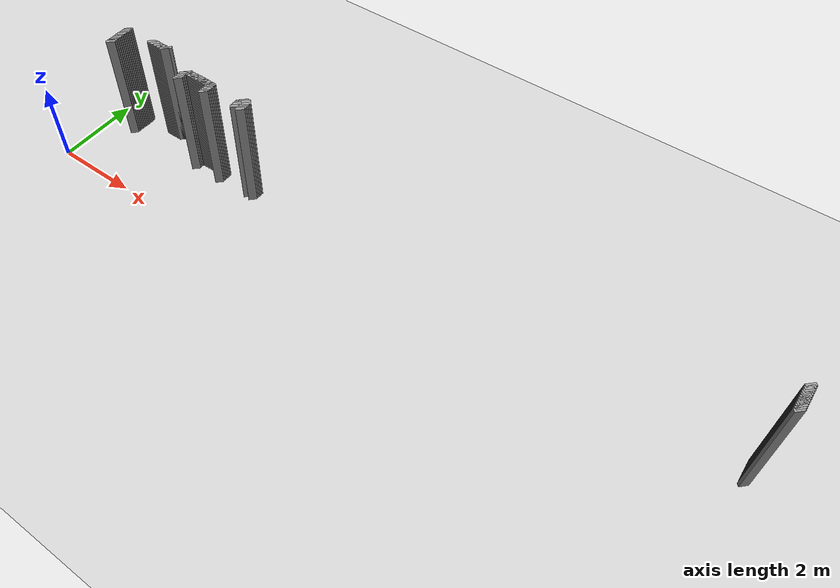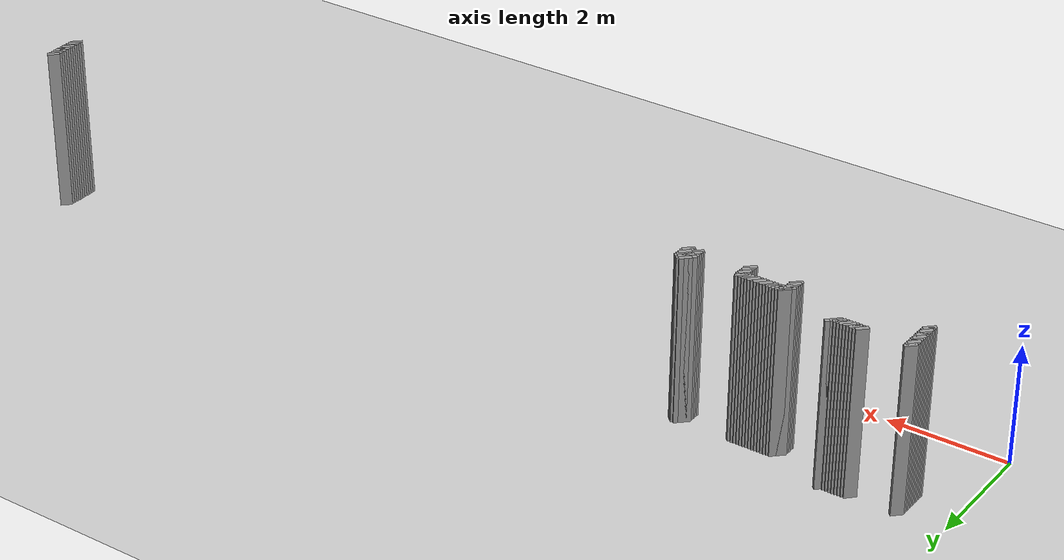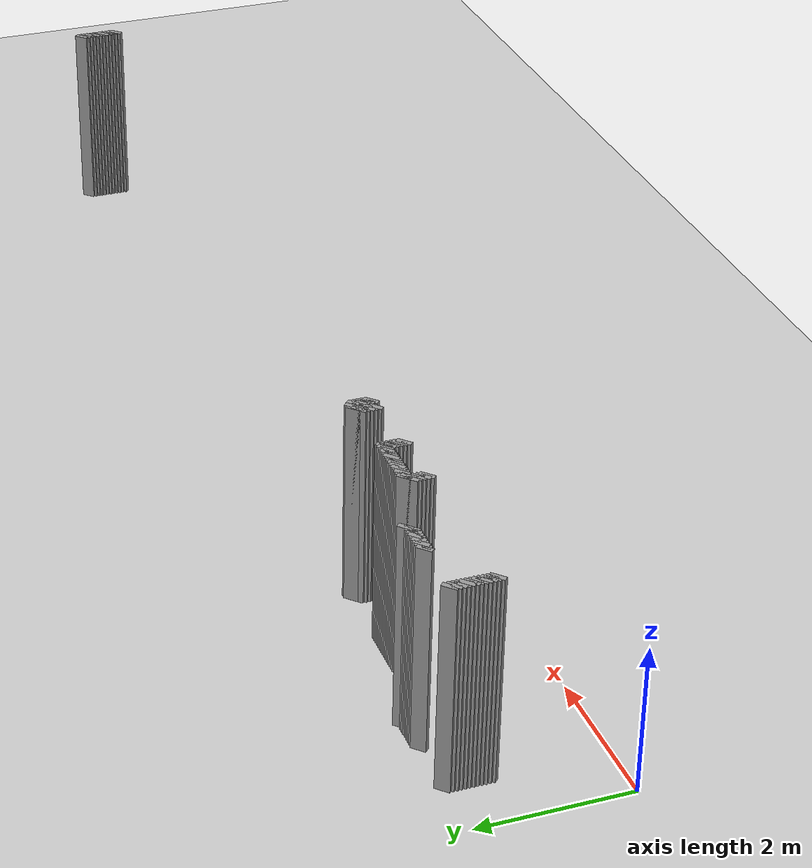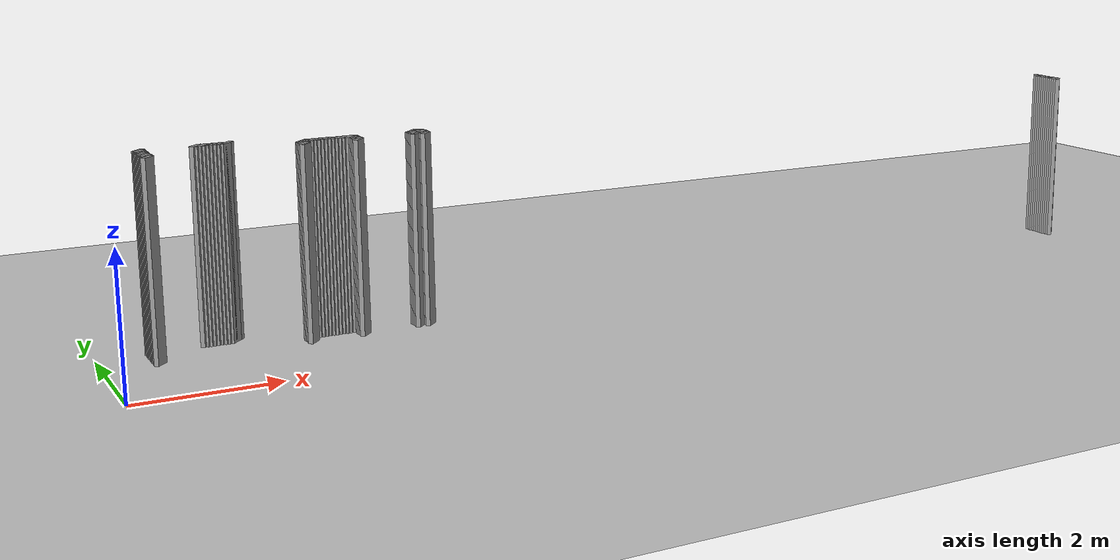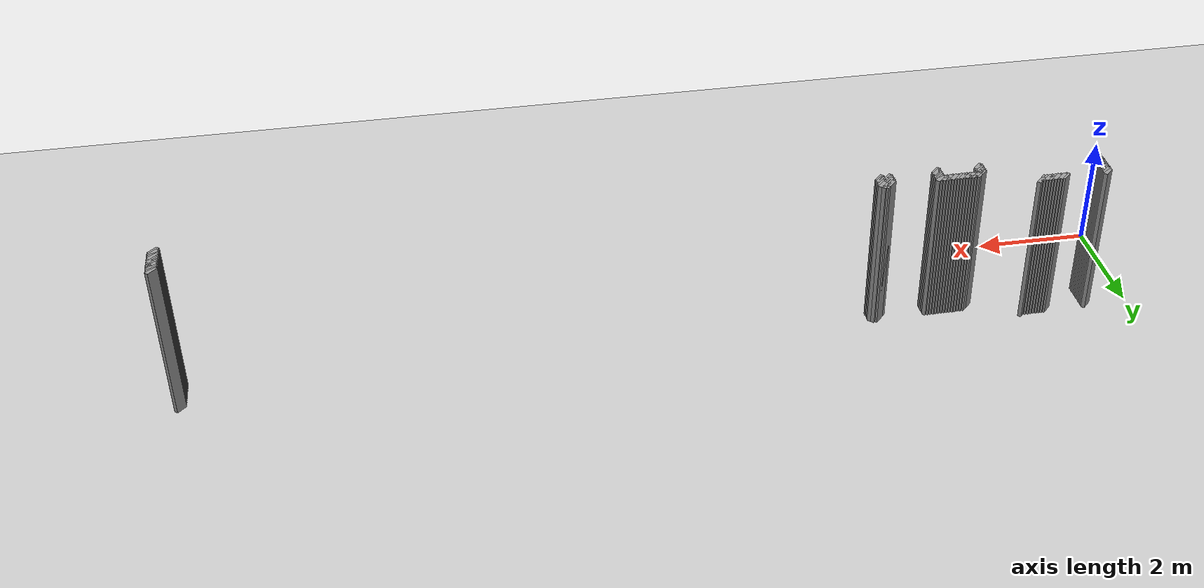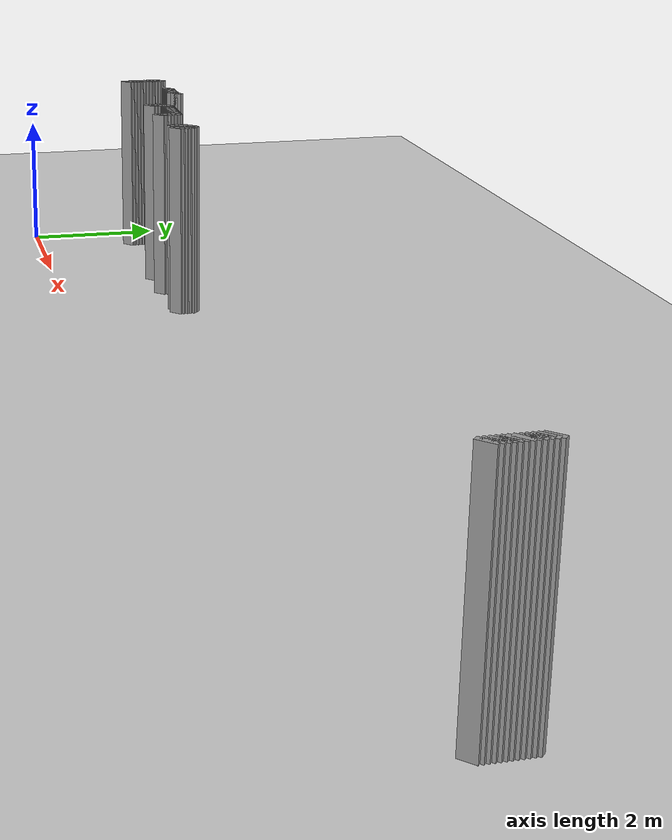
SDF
<sdf version="1.5">
 <world name="default">
  <include><uri>model://ground_plane</uri></include>
  <include><uri>model://sun</uri></include>
  <model name="grey_wall_2442">
   <static>1</static>
   <link name="link">
    <pose>1.9500000000000002 2.1  1.4 0 0 -0.7853981633974483</pose>
    <collision name="collision">
     <geometry><box><size>0.0707106781186545 .2  2.8</size></box></geometry>
    </collision>
    <visual name="visual">
     <cast_shadows>0</cast_shadows>
     <geometry><box><size>0.0707106781186545 .2  2.8</size></box></geometry>
     <material>
      <script>
       <uri>model://grey_wall/materials/scripts</uri>
       <uri>model://grey_wall/materials/textures</uri>
       <name>vrc/grey_wall</name>
      </script>
     </material>
    </visual>
   </link>
  </model>
  <model name="grey_wall_2443">
   <static>1</static>
   <link name="link">
    <pose>16.45 2.1  1.4 0 0 -0.7853981633974749</pose>
    <collision name="collision">
     <geometry><box><size>0.07071067811865261 .2  2.8</size></box></geometry>
    </collision>
    <visual name="visual">
     <cast_shadows>0</cast_shadows>
     <geometry><box><size>0.07071067811865261 .2  2.8</size></box></geometry>
     <material>
      <script>
       <uri>model://grey_wall/materials/scripts</uri>
       <uri>model://grey_wall/materials/textures</uri>
       <name>vrc/grey_wall</name>
      </script>
     </material>
    </visual>
   </link>
  </model>
  <model name="grey_wall_2444">
   <static>1</static>
   <link name="link">
    <pose>0.75 2.0500000000000003  1.4 0 0 -0.7853981633974461</pose>
    <collision name="collision">
     <geometry><box><size>0.07071067811865465 .2  2.8</size></box></geometry>
    </collision>
    <visual name="visual">
     <cast_shadows>0</cast_shadows>
     <geometry><box><size>0.07071067811865465 .2  2.8</size></box></geometry>
     <material>
      <script>
       <uri>model://grey_wall/materials/scripts</uri>
       <uri>model://grey_wall/materials/textures</uri>
       <name>vrc/grey_wall</name>
      </script>
     </material>
    </visual>
   </link>
  </model>
  <model name="grey_wall_2445">
   <static>1</static>
   <link name="link">
    <pose>1.5 2.0500000000000003  1.4 0 0 -0.7853981633974483</pose>
    <collision name="collision">
     <geometry><box><size>0.0707106781186545 .2  2.8</size></box></geometry>
    </collision>
    <visual name="visual">
     <cast_shadows>0</cast_shadows>
     <geometry><box><size>0.0707106781186545 .2  2.8</size></box></geometry>
     <material>
      <script>
       <uri>model://grey_wall/materials/scripts</uri>
       <uri>model://grey_wall/materials/textures</uri>
       <name>vrc/grey_wall</name>
      </script>
     </material>
    </visual>
   </link>
  </model>
  <model name="grey_wall_2446">
   <static>1</static>
   <link name="link">
    <pose>1.55 2.0500000000000003  1.4 0 0 -0.7853981633974483</pose>
    <collision name="collision">
     <geometry><box><size>0.0707106781186545 .2  2.8</size></box></geometry>
    </collision>
    <visual name="visual">
     <cast_shadows>0</cast_shadows>
     <geometry><box><size>0.0707106781186545 .2  2.8</size></box></geometry>
     <material>
      <script>
       <uri>model://grey_wall/materials/scripts</uri>
       <uri>model://grey_wall/materials/textures</uri>
       <name>vrc/grey_wall</name>
      </script>
     </material>
    </visual>
   </link>
  </model>
  <model name="grey_wall_2447">
   <static>1</static>
   <link name="link">
    <pose>1.6 2.0500000000000003  1.4 0 0 -0.7853981633974483</pose>
    <collision name="collision">
     <geometry><box><size>0.0707106781186545 .2  2.8</size></box></geometry>
    </collision>
    <visual name="visual">
     <cast_shadows>0</cast_shadows>
     <geometry><box><size>0.0707106781186545 .2  2.8</size></box></geometry>
     <material>
      <script>
       <uri>model://grey_wall/materials/scripts</uri>
       <uri>model://grey_wall/materials/textures</uri>
       <name>vrc/grey_wall</name>
      </script>
     </material>
    </visual>
   </link>
  </model>
  <model name="grey_wall_2448">
   <static>1</static>
   <link name="link">
    <pose>1.6500000000000001 2.0500000000000003  1.4 0 0 -0.7853981633974483</pose>
    <collision name="collision">
     <geometry><box><size>0.0707106781186545 .2  2.8</size></box></geometry>
    </collision>
    <visual name="visual">
     <cast_shadows>0</cast_shadows>
     <geometry><box><size>0.0707106781186545 .2  2.8</size></box></geometry>
     <material>
      <script>
       <uri>model://grey_wall/materials/scripts</uri>
       <uri>model://grey_wall/materials/textures</uri>
       <name>vrc/grey_wall</name>
      </script>
     </material>
    </visual>
   </link>
  </model>
  <model name="grey_wall_2449">
   <static>1</static>
   <link name="link">
    <pose>1.7000000000000002 2.0500000000000003  1.4 0 0 -0.7853981633974483</pose>
    <collision name="collision">
     <geometry><box><size>0.0707106781186545 .2  2.8</size></box></geometry>
    </collision>
    <visual name="visual">
     <cast_shadows>0</cast_shadows>
     <geometry><box><size>0.0707106781186545 .2  2.8</size></box></geometry>
     <material>
      <script>
       <uri>model://grey_wall/materials/scripts</uri>
       <uri>model://grey_wall/materials/textures</uri>
       <name>vrc/grey_wall</name>
      </script>
     </material>
    </visual>
   </link>
  </model>
  <model name="grey_wall_2450">
   <static>1</static>
   <link name="link">
    <pose>1.75 2.0500000000000003  1.4 0 0 -0.7853981633974483</pose>
    <collision name="collision">
     <geometry><box><size>0.0707106781186545 .2  2.8</size></box></geometry>
    </collision>
    <visual name="visual">
     <cast_shadows>0</cast_shadows>
     <geometry><box><size>0.0707106781186545 .2  2.8</size></box></geometry>
     <material>
      <script>
       <uri>model://grey_wall/materials/scripts</uri>
       <uri>model://grey_wall/materials/textures</uri>
       <name>vrc/grey_wall</name>
      </script>
     </material>
    </visual>
   </link>
  </model>
  <model name="grey_wall_2451">
   <static>1</static>
   <link name="link">
    <pose>1.8 2.0500000000000003  1.4 0 0 -0.7853981633974483</pose>
    <collision name="collision">
     <geometry><box><size>0.0707106781186545 .2  2.8</size></box></geometry>
    </collision>
    <visual name="visual">
     <cast_shadows>0</cast_shadows>
     <geometry><box><size>0.0707106781186545 .2  2.8</size></box></geometry>
     <material>
      <script>
       <uri>model://grey_wall/materials/scripts</uri>
       <uri>model://grey_wall/materials/textures</uri>
       <name>vrc/grey_wall</name>
      </script>
     </material>
    </visual>
   </link>
  </model>
  <model name="grey_wall_2452">
   <static>1</static>
   <link name="link">
    <pose>1.85 2.0500000000000003  1.4 0 0 -0.7853981633974483</pose>
    <collision name="collision">
     <geometry><box><size>0.0707106781186545 .2  2.8</size></box></geometry>
    </collision>
    <visual name="visual">
     <cast_shadows>0</cast_shadows>
     <geometry><box><size>0.0707106781186545 .2  2.8</size></box></geometry>
     <material>
      <script>
       <uri>model://grey_wall/materials/scripts</uri>
       <uri>model://grey_wall/materials/textures</uri>
       <name>vrc/grey_wall</name>
      </script>
     </material>
    </visual>
   </link>
  </model>
  <model name="grey_wall_2453">
   <static>1</static>
   <link name="link">
    <pose>1.9000000000000001 2.0500000000000003  1.4 0 0 -0.7853981633974483</pose>
    <collision name="collision">
     <geometry><box><size>0.0707106781186545 .2  2.8</size></box></geometry>
    </collision>
    <visual name="visual">
     <cast_shadows>0</cast_shadows>
     <geometry><box><size>0.0707106781186545 .2  2.8</size></box></geometry>
     <material>
      <script>
       <uri>model://grey_wall/materials/scripts</uri>
       <uri>model://grey_wall/materials/textures</uri>
       <name>vrc/grey_wall</name>
      </script>
     </material>
    </visual>
   </link>
  </model>
  <model name="grey_wall_2454">
   <static>1</static>
   <link name="link">
    <pose>16.45 2.0500000000000003  1.4 0 0 -0.7853981633974749</pose>
    <collision name="collision">
     <geometry><box><size>0.07071067811865261 .2  2.8</size></box></geometry>
    </collision>
    <visual name="visual">
     <cast_shadows>0</cast_shadows>
     <geometry><box><size>0.07071067811865261 .2  2.8</size></box></geometry>
     <material>
      <script>
       <uri>model://grey_wall/materials/scripts</uri>
       <uri>model://grey_wall/materials/textures</uri>
       <name>vrc/grey_wall</name>
      </script>
     </material>
    </visual>
   </link>
  </model>
  <model name="grey_wall_2455">
   <static>1</static>
   <link name="link">
    <pose>0.75 2.0  1.4 0 0 -0.7853981633974461</pose>
    <collision name="collision">
     <geometry><box><size>0.07071067811865465 .2  2.8</size></box></geometry>
    </collision>
    <visual name="visual">
     <cast_shadows>0</cast_shadows>
     <geometry><box><size>0.07071067811865465 .2  2.8</size></box></geometry>
     <material>
      <script>
       <uri>model://grey_wall/materials/scripts</uri>
       <uri>model://grey_wall/materials/textures</uri>
       <name>vrc/grey_wall</name>
      </script>
     </material>
    </visual>
   </link>
  </model>
  <model name="grey_wall_2456">
   <static>1</static>
   <link name="link">
    <pose>16.45 2.0  1.4 0 0 -0.7853981633974749</pose>
    <collision name="collision">
     <geometry><box><size>0.07071067811865261 .2  2.8</size></box></geometry>
    </collision>
    <visual name="visual">
     <cast_shadows>0</cast_shadows>
     <geometry><box><size>0.07071067811865261 .2  2.8</size></box></geometry>
     <material>
      <script>
       <uri>model://grey_wall/materials/scripts</uri>
       <uri>model://grey_wall/materials/textures</uri>
       <name>vrc/grey_wall</name>
      </script>
     </material>
    </visual>
   </link>
  </model>
  <model name="grey_wall_2457">
   <static>1</static>
   <link name="link">
    <pose>0.75 1.9500000000000002  1.4 0 0 -0.7853981633974461</pose>
    <collision name="collision">
     <geometry><box><size>0.07071067811865465 .2  2.8</size></box></geometry>
    </collision>
    <visual name="visual">
     <cast_shadows>0</cast_shadows>
     <geometry><box><size>0.07071067811865465 .2  2.8</size></box></geometry>
     <material>
      <script>
       <uri>model://grey_wall/materials/scripts</uri>
       <uri>model://grey_wall/materials/textures</uri>
       <name>vrc/grey_wall</name>
      </script>
     </material>
    </visual>
   </link>
  </model>
  <model name="grey_wall_2458">
   <static>1</static>
   <link name="link">
    <pose>16.45 1.9500000000000002  1.4 0 0 -0.7853981633974749</pose>
    <collision name="collision">
     <geometry><box><size>0.07071067811865261 .2  2.8</size></box></geometry>
    </collision>
    <visual name="visual">
     <cast_shadows>0</cast_shadows>
     <geometry><box><size>0.07071067811865261 .2  2.8</size></box></geometry>
     <material>
      <script>
       <uri>model://grey_wall/materials/scripts</uri>
       <uri>model://grey_wall/materials/textures</uri>
       <name>vrc/grey_wall</name>
      </script>
     </material>
    </visual>
   </link>
  </model>
  <model name="grey_wall_2459">
   <static>1</static>
   <link name="link">
    <pose>0.75 1.9000000000000001  1.4 0 0 -0.7853981633974461</pose>
    <collision name="collision">
     <geometry><box><size>0.07071067811865465 .2  2.8</size></box></geometry>
    </collision>
    <visual name="visual">
     <cast_shadows>0</cast_shadows>
     <geometry><box><size>0.07071067811865465 .2  2.8</size></box></geometry>
     <material>
      <script>
       <uri>model://grey_wall/materials/scripts</uri>
       <uri>model://grey_wall/materials/textures</uri>
       <name>vrc/grey_wall</name>
      </script>
     </material>
    </visual>
   </link>
  </model>
  <model name="grey_wall_2460">
   <static>1</static>
   <link name="link">
    <pose>16.45 1.9000000000000001  1.4 0 0 -0.7853981633974749</pose>
    <collision name="collision">
     <geometry><box><size>0.07071067811865261 .2  2.8</size></box></geometry>
    </collision>
    <visual name="visual">
     <cast_shadows>0</cast_shadows>
     <geometry><box><size>0.07071067811865261 .2  2.8</size></box></geometry>
     <material>
      <script>
       <uri>model://grey_wall/materials/scripts</uri>
       <uri>model://grey_wall/materials/textures</uri>
       <name>vrc/grey_wall</name>
      </script>
     </material>
    </visual>
   </link>
  </model>
  <model name="grey_wall_2461">
   <static>1</static>
   <link name="link">
    <pose>0.75 1.85  1.4 0 0 -0.7853981633974461</pose>
    <collision name="collision">
     <geometry><box><size>0.07071067811865465 .2  2.8</size></box></geometry>
    </collision>
    <visual name="visual">
     <cast_shadows>0</cast_shadows>
     <geometry><box><size>0.07071067811865465 .2  2.8</size></box></geometry>
     <material>
      <script>
       <uri>model://grey_wall/materials/scripts</uri>
       <uri>model://grey_wall/materials/textures</uri>
       <name>vrc/grey_wall</name>
      </script>
     </material>
    </visual>
   </link>
  </model>
  <model name="grey_wall_2462">
   <static>1</static>
   <link name="link">
    <pose>16.45 1.85  1.4 0 0 -0.7853981633974749</pose>
    <collision name="collision">
     <geometry><box><size>0.07071067811865261 .2  2.8</size></box></geometry>
    </collision>
    <visual name="visual">
     <cast_shadows>0</cast_shadows>
     <geometry><box><size>0.07071067811865261 .2  2.8</size></box></geometry>
     <material>
      <script>
       <uri>model://grey_wall/materials/scripts</uri>
       <uri>model://grey_wall/materials/textures</uri>
       <name>vrc/grey_wall</name>
      </script>
     </material>
    </visual>
   </link>
  </model>
  <model name="grey_wall_2463">
   <static>1</static>
   <link name="link">
    <pose>0.75 1.8  1.4 0 0 -0.7853981633974461</pose>
    <collision name="collision">
     <geometry><box><size>0.07071067811865465 .2  2.8</size></box></geometry>
    </collision>
    <visual name="visual">
     <cast_shadows>0</cast_shadows>
     <geometry><box><size>0.07071067811865465 .2  2.8</size></box></geometry>
     <material>
      <script>
       <uri>model://grey_wall/materials/scripts</uri>
       <uri>model://grey_wall/materials/textures</uri>
       <name>vrc/grey_wall</name>
      </script>
     </material>
    </visual>
   </link>
  </model>
  <model name="grey_wall_2464">
   <static>1</static>
   <link name="link">
    <pose>4.5 1.8  1.4 0 0 -0.7853981633974394</pose>
    <collision name="collision">
     <geometry><box><size>0.07071067811865513 .2  2.8</size></box></geometry>
    </collision>
    <visual name="visual">
     <cast_shadows>0</cast_shadows>
     <geometry><box><size>0.07071067811865513 .2  2.8</size></box></geometry>
     <material>
      <script>
       <uri>model://grey_wall/materials/scripts</uri>
       <uri>model://grey_wall/materials/textures</uri>
       <name>vrc/grey_wall</name>
      </script>
     </material>
    </visual>
   </link>
  </model>
  <model name="grey_wall_2465">
   <static>1</static>
   <link name="link">
    <pose>4.55 1.8  1.4 0 0 -0.7853981633974394</pose>
    <collision name="collision">
     <geometry><box><size>0.07071067811865513 .2  2.8</size></box></geometry>
    </collision>
    <visual name="visual">
     <cast_shadows>0</cast_shadows>
     <geometry><box><size>0.07071067811865513 .2  2.8</size></box></geometry>
     <material>
      <script>
       <uri>model://grey_wall/materials/scripts</uri>
       <uri>model://grey_wall/materials/textures</uri>
       <name>vrc/grey_wall</name>
      </script>
     </material>
    </visual>
   </link>
  </model>
  <model name="grey_wall_2466">
   <static>1</static>
   <link name="link">
    <pose>16.45 1.8  1.4 0 0 -0.7853981633974749</pose>
    <collision name="collision">
     <geometry><box><size>0.07071067811865261 .2  2.8</size></box></geometry>
    </collision>
    <visual name="visual">
     <cast_shadows>0</cast_shadows>
     <geometry><box><size>0.07071067811865261 .2  2.8</size></box></geometry>
     <material>
      <script>
       <uri>model://grey_wall/materials/scripts</uri>
       <uri>model://grey_wall/materials/textures</uri>
       <name>vrc/grey_wall</name>
      </script>
     </material>
    </visual>
   </link>
  </model>
  <model name="grey_wall_2467">
   <static>1</static>
   <link name="link">
    <pose>0.75 1.75  1.4 0 0 -0.7853981633974461</pose>
    <collision name="collision">
     <geometry><box><size>0.07071067811865465 .2  2.8</size></box></geometry>
    </collision>
    <visual name="visual">
     <cast_shadows>0</cast_shadows>
     <geometry><box><size>0.07071067811865465 .2  2.8</size></box></geometry>
     <material>
      <script>
       <uri>model://grey_wall/materials/scripts</uri>
       <uri>model://grey_wall/materials/textures</uri>
       <name>vrc/grey_wall</name>
      </script>
     </material>
    </visual>
   </link>
  </model>
  <model name="grey_wall_2468">
   <static>1</static>
   <link name="link">
    <pose>2.9000000000000004 1.75  1.4 0 0 -0.7853981633974483</pose>
    <collision name="collision">
     <geometry><box><size>0.0707106781186545 .2  2.8</size></box></geometry>
    </collision>
    <visual name="visual">
     <cast_shadows>0</cast_shadows>
     <geometry><box><size>0.0707106781186545 .2  2.8</size></box></geometry>
     <material>
      <script>
       <uri>model://grey_wall/materials/scripts</uri>
       <uri>model://grey_wall/materials/textures</uri>
       <name>vrc/grey_wall</name>
      </script>
     </material>
    </visual>
   </link>
  </model>
  <model name="grey_wall_2469">
   <static>1</static>
   <link name="link">
    <pose>2.95 1.75  1.4 0 0 -0.7853981633974483</pose>
    <collision name="collision">
     <geometry><box><size>0.0707106781186545 .2  2.8</size></box></geometry>
    </collision>
    <visual name="visual">
     <cast_shadows>0</cast_shadows>
     <geometry><box><size>0.0707106781186545 .2  2.8</size></box></geometry>
     <material>
      <script>
       <uri>model://grey_wall/materials/scripts</uri>
       <uri>model://grey_wall/materials/textures</uri>
       <name>vrc/grey_wall</name>
      </script>
     </material>
    </visual>
   </link>
  </model>
  <model name="grey_wall_2470">
   <static>1</static>
   <link name="link">
    <pose>3.0 1.75  1.4 0 0 -0.7853981633974483</pose>
    <collision name="collision">
     <geometry><box><size>0.0707106781186545 .2  2.8</size></box></geometry>
    </collision>
    <visual name="visual">
     <cast_shadows>0</cast_shadows>
     <geometry><box><size>0.0707106781186545 .2  2.8</size></box></geometry>
     <material>
      <script>
       <uri>model://grey_wall/materials/scripts</uri>
       <uri>model://grey_wall/materials/textures</uri>
       <name>vrc/grey_wall</name>
      </script>
     </material>
    </visual>
   </link>
  </model>
  <model name="grey_wall_2471">
   <static>1</static>
   <link name="link">
    <pose>3.0500000000000003 1.75  1.4 0 0 -0.7853981633974483</pose>
    <collision name="collision">
     <geometry><box><size>0.0707106781186545 .2  2.8</size></box></geometry>
    </collision>
    <visual name="visual">
     <cast_shadows>0</cast_shadows>
     <geometry><box><size>0.0707106781186545 .2  2.8</size></box></geometry>
     <material>
      <script>
       <uri>model://grey_wall/materials/scripts</uri>
       <uri>model://grey_wall/materials/textures</uri>
       <name>vrc/grey_wall</name>
      </script>
     </material>
    </visual>
   </link>
  </model>
  <model name="grey_wall_2472">
   <static>1</static>
   <link name="link">
    <pose>3.1 1.75  1.4 0 0 -0.7853981633974483</pose>
    <collision name="collision">
     <geometry><box><size>0.0707106781186545 .2  2.8</size></box></geometry>
    </collision>
    <visual name="visual">
     <cast_shadows>0</cast_shadows>
     <geometry><box><size>0.0707106781186545 .2  2.8</size></box></geometry>
     <material>
      <script>
       <uri>model://grey_wall/materials/scripts</uri>
       <uri>model://grey_wall/materials/textures</uri>
       <name>vrc/grey_wall</name>
      </script>
     </material>
    </visual>
   </link>
  </model>
  <model name="grey_wall_2473">
   <static>1</static>
   <link name="link">
    <pose>3.1500000000000004 1.75  1.4 0 0 -0.7853981633974483</pose>
    <collision name="collision">
     <geometry><box><size>0.0707106781186545 .2  2.8</size></box></geometry>
    </collision>
    <visual name="visual">
     <cast_shadows>0</cast_shadows>
     <geometry><box><size>0.0707106781186545 .2  2.8</size></box></geometry>
     <material>
      <script>
       <uri>model://grey_wall/materials/scripts</uri>
       <uri>model://grey_wall/materials/textures</uri>
       <name>vrc/grey_wall</name>
      </script>
     </material>
    </visual>
   </link>
  </model>
  <model name="grey_wall_2474">
   <static>1</static>
   <link name="link">
    <pose>3.2 1.75  1.4 0 0 -0.7853981633974483</pose>
    <collision name="collision">
     <geometry><box><size>0.0707106781186545 .2  2.8</size></box></geometry>
    </collision>
    <visual name="visual">
     <cast_shadows>0</cast_shadows>
     <geometry><box><size>0.0707106781186545 .2  2.8</size></box></geometry>
     <material>
      <script>
       <uri>model://grey_wall/materials/scripts</uri>
       <uri>model://grey_wall/materials/textures</uri>
       <name>vrc/grey_wall</name>
      </script>
     </material>
    </visual>
   </link>
  </model>
  <model name="grey_wall_2475">
   <static>1</static>
   <link name="link">
    <pose>3.25 1.75  1.4 0 0 -0.7853981633974483</pose>
    <collision name="collision">
     <geometry><box><size>0.0707106781186545 .2  2.8</size></box></geometry>
    </collision>
    <visual name="visual">
     <cast_shadows>0</cast_shadows>
     <geometry><box><size>0.0707106781186545 .2  2.8</size></box></geometry>
     <material>
      <script>
       <uri>model://grey_wall/materials/scripts</uri>
       <uri>model://grey_wall/materials/textures</uri>
       <name>vrc/grey_wall</name>
      </script>
     </material>
    </visual>
   </link>
  </model>
  <model name="grey_wall_2476">
   <static>1</static>
   <link name="link">
    <pose>3.3000000000000003 1.75  1.4 0 0 -0.7853981633974483</pose>
    <collision name="collision">
     <geometry><box><size>0.0707106781186545 .2  2.8</size></box></geometry>
    </collision>
    <visual name="visual">
     <cast_shadows>0</cast_shadows>
     <geometry><box><size>0.0707106781186545 .2  2.8</size></box></geometry>
     <material>
      <script>
       <uri>model://grey_wall/materials/scripts</uri>
       <uri>model://grey_wall/materials/textures</uri>
       <name>vrc/grey_wall</name>
      </script>
     </material>
    </visual>
   </link>
  </model>
  <model name="grey_wall_2477">
   <static>1</static>
   <link name="link">
    <pose>3.35 1.75  1.4 0 0 -0.7853981633974483</pose>
    <collision name="collision">
     <geometry><box><size>0.0707106781186545 .2  2.8</size></box></geometry>
    </collision>
    <visual name="visual">
     <cast_shadows>0</cast_shadows>
     <geometry><box><size>0.0707106781186545 .2  2.8</size></box></geometry>
     <material>
      <script>
       <uri>model://grey_wall/materials/scripts</uri>
       <uri>model://grey_wall/materials/textures</uri>
       <name>vrc/grey_wall</name>
      </script>
     </material>
    </visual>
   </link>
  </model>
  <model name="grey_wall_2478">
   <static>1</static>
   <link name="link">
    <pose>3.4000000000000004 1.75  1.4 0 0 -0.7853981633974483</pose>
    <collision name="collision">
     <geometry><box><size>0.0707106781186545 .2  2.8</size></box></geometry>
    </collision>
    <visual name="visual">
     <cast_shadows>0</cast_shadows>
     <geometry><box><size>0.0707106781186545 .2  2.8</size></box></geometry>
     <material>
      <script>
       <uri>model://grey_wall/materials/scripts</uri>
       <uri>model://grey_wall/materials/textures</uri>
       <name>vrc/grey_wall</name>
      </script>
     </material>
    </visual>
   </link>
  </model>
  <model name="grey_wall_2479">
   <static>1</static>
   <link name="link">
    <pose>3.45 1.75  1.4 0 0 -0.7853981633974483</pose>
    <collision name="collision">
     <geometry><box><size>0.0707106781186545 .2  2.8</size></box></geometry>
    </collision>
    <visual name="visual">
     <cast_shadows>0</cast_shadows>
     <geometry><box><size>0.0707106781186545 .2  2.8</size></box></geometry>
     <material>
      <script>
       <uri>model://grey_wall/materials/scripts</uri>
       <uri>model://grey_wall/materials/textures</uri>
       <name>vrc/grey_wall</name>
      </script>
     </material>
    </visual>
   </link>
  </model>
  <model name="grey_wall_2480">
   <static>1</static>
   <link name="link">
    <pose>3.5 1.75  1.4 0 0 -0.7853981633974483</pose>
    <collision name="collision">
     <geometry><box><size>0.0707106781186545 .2  2.8</size></box></geometry>
    </collision>
    <visual name="visual">
     <cast_shadows>0</cast_shadows>
     <geometry><box><size>0.0707106781186545 .2  2.8</size></box></geometry>
     <material>
      <script>
       <uri>model://grey_wall/materials/scripts</uri>
       <uri>model://grey_wall/materials/textures</uri>
       <name>vrc/grey_wall</name>
      </script>
     </material>
    </visual>
   </link>
  </model>
  <model name="grey_wall_2481">
   <static>1</static>
   <link name="link">
    <pose>3.5500000000000003 1.75  1.4 0 0 -0.7853981633974483</pose>
    <collision name="collision">
     <geometry><box><size>0.0707106781186545 .2  2.8</size></box></geometry>
    </collision>
    <visual name="visual">
     <cast_shadows>0</cast_shadows>
     <geometry><box><size>0.0707106781186545 .2  2.8</size></box></geometry>
     <material>
      <script>
       <uri>model://grey_wall/materials/scripts</uri>
       <uri>model://grey_wall/materials/textures</uri>
       <name>vrc/grey_wall</name>
      </script>
     </material>
    </visual>
   </link>
  </model>
  <model name="grey_wall_2482">
   <static>1</static>
   <link name="link">
    <pose>3.6 1.75  1.4 0 0 -0.7853981633974483</pose>
    <collision name="collision">
     <geometry><box><size>0.0707106781186545 .2  2.8</size></box></geometry>
    </collision>
    <visual name="visual">
     <cast_shadows>0</cast_shadows>
     <geometry><box><size>0.0707106781186545 .2  2.8</size></box></geometry>
     <material>
      <script>
       <uri>model://grey_wall/materials/scripts</uri>
       <uri>model://grey_wall/materials/textures</uri>
       <name>vrc/grey_wall</name>
      </script>
     </material>
    </visual>
   </link>
  </model>
  <model name="grey_wall_2483">
   <static>1</static>
   <link name="link">
    <pose>4.45 1.75  1.4 0 0 -0.7853981633974394</pose>
    <collision name="collision">
     <geometry><box><size>0.07071067811865513 .2  2.8</size></box></geometry>
    </collision>
    <visual name="visual">
     <cast_shadows>0</cast_shadows>
     <geometry><box><size>0.07071067811865513 .2  2.8</size></box></geometry>
     <material>
      <script>
       <uri>model://grey_wall/materials/scripts</uri>
       <uri>model://grey_wall/materials/textures</uri>
       <name>vrc/grey_wall</name>
      </script>
     </material>
    </visual>
   </link>
  </model>
  <model name="grey_wall_2484">
   <static>1</static>
   <link name="link">
    <pose>4.5 1.75  1.4 0 0 -0.7853981633974394</pose>
    <collision name="collision">
     <geometry><box><size>0.07071067811865513 .2  2.8</size></box></geometry>
    </collision>
    <visual name="visual">
     <cast_shadows>0</cast_shadows>
     <geometry><box><size>0.07071067811865513 .2  2.8</size></box></geometry>
     <material>
      <script>
       <uri>model://grey_wall/materials/scripts</uri>
       <uri>model://grey_wall/materials/textures</uri>
       <name>vrc/grey_wall</name>
      </script>
     </material>
    </visual>
   </link>
  </model>
  <model name="grey_wall_2485">
   <static>1</static>
   <link name="link">
    <pose>4.55 1.75  1.4 0 0 -0.7853981633974394</pose>
    <collision name="collision">
     <geometry><box><size>0.07071067811865513 .2  2.8</size></box></geometry>
    </collision>
    <visual name="visual">
     <cast_shadows>0</cast_shadows>
     <geometry><box><size>0.07071067811865513 .2  2.8</size></box></geometry>
     <material>
      <script>
       <uri>model://grey_wall/materials/scripts</uri>
       <uri>model://grey_wall/materials/textures</uri>
       <name>vrc/grey_wall</name>
      </script>
     </material>
    </visual>
   </link>
  </model>
  <model name="grey_wall_2486">
   <static>1</static>
   <link name="link">
    <pose>4.6000000000000005 1.75  1.4 0 0 -0.7853981633974394</pose>
    <collision name="collision">
     <geometry><box><size>0.07071067811865513 .2  2.8</size></box></geometry>
    </collision>
    <visual name="visual">
     <cast_shadows>0</cast_shadows>
     <geometry><box><size>0.07071067811865513 .2  2.8</size></box></geometry>
     <material>
      <script>
       <uri>model://grey_wall/materials/scripts</uri>
       <uri>model://grey_wall/materials/textures</uri>
       <name>vrc/grey_wall</name>
      </script>
     </material>
    </visual>
   </link>
  </model>
  <model name="grey_wall_2487">
   <static>1</static>
   <link name="link">
    <pose>16.45 1.75  1.4 0 0 -0.7853981633974749</pose>
    <collision name="collision">
     <geometry><box><size>0.07071067811865261 .2  2.8</size></box></geometry>
    </collision>
    <visual name="visual">
     <cast_shadows>0</cast_shadows>
     <geometry><box><size>0.07071067811865261 .2  2.8</size></box></geometry>
     <material>
      <script>
       <uri>model://grey_wall/materials/scripts</uri>
       <uri>model://grey_wall/materials/textures</uri>
       <name>vrc/grey_wall</name>
      </script>
     </material>
    </visual>
   </link>
  </model>
  <model name="grey_wall_2488">
   <static>1</static>
   <link name="link">
    <pose>0.75 1.7000000000000002  1.4 0 0 -0.7853981633974461</pose>
    <collision name="collision">
     <geometry><box><size>0.07071067811865465 .2  2.8</size></box></geometry>
    </collision>
    <visual name="visual">
     <cast_shadows>0</cast_shadows>
     <geometry><box><size>0.07071067811865465 .2  2.8</size></box></geometry>
     <material>
      <script>
       <uri>model://grey_wall/materials/scripts</uri>
       <uri>model://grey_wall/materials/textures</uri>
       <name>vrc/grey_wall</name>
      </script>
     </material>
    </visual>
   </link>
  </model>
  <model name="grey_wall_2489">
   <static>1</static>
   <link name="link">
    <pose>2.85 1.7000000000000002  1.4 0 0 -0.7853981633974483</pose>
    <collision name="collision">
     <geometry><box><size>0.0707106781186545 .2  2.8</size></box></geometry>
    </collision>
    <visual name="visual">
     <cast_shadows>0</cast_shadows>
     <geometry><box><size>0.0707106781186545 .2  2.8</size></box></geometry>
     <material>
      <script>
       <uri>model://grey_wall/materials/scripts</uri>
       <uri>model://grey_wall/materials/textures</uri>
       <name>vrc/grey_wall</name>
      </script>
     </material>
    </visual>
   </link>
  </model>
  <model name="grey_wall_2490">
   <static>1</static>
   <link name="link">
    <pose>2.9000000000000004 1.7000000000000002  1.4 0 0 -0.7853981633974483</pose>
    <collision name="collision">
     <geometry><box><size>0.0707106781186545 .2  2.8</size></box></geometry>
    </collision>
    <visual name="visual">
     <cast_shadows>0</cast_shadows>
     <geometry><box><size>0.0707106781186545 .2  2.8</size></box></geometry>
     <material>
      <script>
       <uri>model://grey_wall/materials/scripts</uri>
       <uri>model://grey_wall/materials/textures</uri>
       <name>vrc/grey_wall</name>
      </script>
     </material>
    </visual>
   </link>
  </model>
  <model name="grey_wall_2491">
   <static>1</static>
   <link name="link">
    <pose>3.6 1.7000000000000002  1.4 0 0 -0.7853981633974483</pose>
    <collision name="collision">
     <geometry><box><size>0.0707106781186545 .2  2.8</size></box></geometry>
    </collision>
    <visual name="visual">
     <cast_shadows>0</cast_shadows>
     <geometry><box><size>0.0707106781186545 .2  2.8</size></box></geometry>
     <material>
      <script>
       <uri>model://grey_wall/materials/scripts</uri>
       <uri>model://grey_wall/materials/textures</uri>
       <name>vrc/grey_wall</name>
      </script>
     </material>
    </visual>
   </link>
  </model>
  <model name="grey_wall_2492">
   <static>1</static>
   <link name="link">
    <pose>4.45 1.7000000000000002  1.4 0 0 -0.7853981633974394</pose>
    <collision name="collision">
     <geometry><box><size>0.07071067811865513 .2  2.8</size></box></geometry>
    </collision>
    <visual name="visual">
     <cast_shadows>0</cast_shadows>
     <geometry><box><size>0.07071067811865513 .2  2.8</size></box></geometry>
     <material>
      <script>
       <uri>model://grey_wall/materials/scripts</uri>
       <uri>model://grey_wall/materials/textures</uri>
       <name>vrc/grey_wall</name>
      </script>
     </material>
    </visual>
   </link>
  </model>
  <model name="grey_wall_2493">
   <static>1</static>
   <link name="link">
    <pose>4.6000000000000005 1.7000000000000002  1.4 0 0 -0.7853981633974394</pose>
    <collision name="collision">
     <geometry><box><size>0.07071067811865513 .2  2.8</size></box></geometry>
    </collision>
    <visual name="visual">
     <cast_shadows>0</cast_shadows>
     <geometry><box><size>0.07071067811865513 .2  2.8</size></box></geometry>
     <material>
      <script>
       <uri>model://grey_wall/materials/scripts</uri>
       <uri>model://grey_wall/materials/textures</uri>
       <name>vrc/grey_wall</name>
      </script>
     </material>
    </visual>
   </link>
  </model>
  <model name="grey_wall_2494">
   <static>1</static>
   <link name="link">
    <pose>16.45 1.7000000000000002  1.4 0 0 -0.7853981633974749</pose>
    <collision name="collision">
     <geometry><box><size>0.07071067811865261 .2  2.8</size></box></geometry>
    </collision>
    <visual name="visual">
     <cast_shadows>0</cast_shadows>
     <geometry><box><size>0.07071067811865261 .2  2.8</size></box></geometry>
     <material>
      <script>
       <uri>model://grey_wall/materials/scripts</uri>
       <uri>model://grey_wall/materials/textures</uri>
       <name>vrc/grey_wall</name>
      </script>
     </material>
    </visual>
   </link>
  </model>
  <model name="grey_wall_2495">
   <static>1</static>
   <link name="link">
    <pose>0.75 1.6500000000000001  1.4 0 0 -0.7853981633974461</pose>
    <collision name="collision">
     <geometry><box><size>0.07071067811865465 .2  2.8</size></box></geometry>
    </collision>
    <visual name="visual">
     <cast_shadows>0</cast_shadows>
     <geometry><box><size>0.07071067811865465 .2  2.8</size></box></geometry>
     <material>
      <script>
       <uri>model://grey_wall/materials/scripts</uri>
       <uri>model://grey_wall/materials/textures</uri>
       <name>vrc/grey_wall</name>
      </script>
     </material>
    </visual>
   </link>
  </model>
  <model name="grey_wall_2496">
   <static>1</static>
   <link name="link">
    <pose>2.85 1.6500000000000001  1.4 0 0 -0.7853981633974483</pose>
    <collision name="collision">
     <geometry><box><size>0.0707106781186545 .2  2.8</size></box></geometry>
    </collision>
    <visual name="visual">
     <cast_shadows>0</cast_shadows>
     <geometry><box><size>0.0707106781186545 .2  2.8</size></box></geometry>
     <material>
      <script>
       <uri>model://grey_wall/materials/scripts</uri>
       <uri>model://grey_wall/materials/textures</uri>
       <name>vrc/grey_wall</name>
      </script>
     </material>
    </visual>
   </link>
  </model>
  <model name="grey_wall_2497">
   <static>1</static>
   <link name="link">
    <pose>3.6 1.6500000000000001  1.4 0 0 -0.7853981633974483</pose>
    <collision name="collision">
     <geometry><box><size>0.0707106781186545 .2  2.8</size></box></geometry>
    </collision>
    <visual name="visual">
     <cast_shadows>0</cast_shadows>
     <geometry><box><size>0.0707106781186545 .2  2.8</size></box></geometry>
     <material>
      <script>
       <uri>model://grey_wall/materials/scripts</uri>
       <uri>model://grey_wall/materials/textures</uri>
       <name>vrc/grey_wall</name>
      </script>
     </material>
    </visual>
   </link>
  </model>
  <model name="grey_wall_2498">
   <static>1</static>
   <link name="link">
    <pose>4.45 1.6500000000000001  1.4 0 0 -0.7853981633974394</pose>
    <collision name="collision">
     <geometry><box><size>0.07071067811865513 .2  2.8</size></box></geometry>
    </collision>
    <visual name="visual">
     <cast_shadows>0</cast_shadows>
     <geometry><box><size>0.07071067811865513 .2  2.8</size></box></geometry>
     <material>
      <script>
       <uri>model://grey_wall/materials/scripts</uri>
       <uri>model://grey_wall/materials/textures</uri>
       <name>vrc/grey_wall</name>
      </script>
     </material>
    </visual>
   </link>
  </model>
  <model name="grey_wall_2499">
   <static>1</static>
   <link name="link">
    <pose>4.6000000000000005 1.6500000000000001  1.4 0 0 -0.7853981633974394</pose>
    <collision name="collision">
     <geometry><box><size>0.07071067811865513 .2  2.8</size></box></geometry>
    </collision>
    <visual name="visual">
     <cast_shadows>0</cast_shadows>
     <geometry><box><size>0.07071067811865513 .2  2.8</size></box></geometry>
     <material>
      <script>
       <uri>model://grey_wall/materials/scripts</uri>
       <uri>model://grey_wall/materials/textures</uri>
       <name>vrc/grey_wall</name>
      </script>
     </material>
    </visual>
   </link>
  </model>
  <model name="grey_wall_2500">
   <static>1</static>
   <link name="link">
    <pose>16.45 1.6500000000000001  1.4 0 0 -0.7853981633974749</pose>
    <collision name="collision">
     <geometry><box><size>0.07071067811865261 .2  2.8</size></box></geometry>
    </collision>
    <visual name="visual">
     <cast_shadows>0</cast_shadows>
     <geometry><box><size>0.07071067811865261 .2  2.8</size></box></geometry>
     <material>
      <script>
       <uri>model://grey_wall/materials/scripts</uri>
       <uri>model://grey_wall/materials/textures</uri>
       <name>vrc/grey_wall</name>
      </script>
     </material>
    </visual>
   </link>
  </model>
  <model name="grey_wall_2501">
   <static>1</static>
   <link name="link">
    <pose>0.75 1.6  1.4 0 0 -0.7853981633974461</pose>
    <collision name="collision">
     <geometry><box><size>0.07071067811865465 .2  2.8</size></box></geometry>
    </collision>
    <visual name="visual">
     <cast_shadows>0</cast_shadows>
     <geometry><box><size>0.07071067811865465 .2  2.8</size></box></geometry>
     <material>
      <script>
       <uri>model://grey_wall/materials/scripts</uri>
       <uri>model://grey_wall/materials/textures</uri>
       <name>vrc/grey_wall</name>
      </script>
     </material>
    </visual>
   </link>
  </model>
  <model name="grey_wall_2502">
   <static>1</static>
   <link name="link">
    <pose>2.85 1.6  1.4 0 0 -0.7853981633974483</pose>
    <collision name="collision">
     <geometry><box><size>0.0707106781186545 .2  2.8</size></box></geometry>
    </collision>
    <visual name="visual">
     <cast_shadows>0</cast_shadows>
     <geometry><box><size>0.0707106781186545 .2  2.8</size></box></geometry>
     <material>
      <script>
       <uri>model://grey_wall/materials/scripts</uri>
       <uri>model://grey_wall/materials/textures</uri>
       <name>vrc/grey_wall</name>
      </script>
     </material>
    </visual>
   </link>
  </model>
  <model name="grey_wall_2503">
   <static>1</static>
   <link name="link">
    <pose>3.6 1.6  1.4 0 0 -0.7853981633974483</pose>
    <collision name="collision">
     <geometry><box><size>0.0707106781186545 .2  2.8</size></box></geometry>
    </collision>
    <visual name="visual">
     <cast_shadows>0</cast_shadows>
     <geometry><box><size>0.0707106781186545 .2  2.8</size></box></geometry>
     <material>
      <script>
       <uri>model://grey_wall/materials/scripts</uri>
       <uri>model://grey_wall/materials/textures</uri>
       <name>vrc/grey_wall</name>
      </script>
     </material>
    </visual>
   </link>
  </model>
  <model name="grey_wall_2504">
   <static>1</static>
   <link name="link">
    <pose>4.45 1.6  1.4 0 0 -0.7853981633974394</pose>
    <collision name="collision">
     <geometry><box><size>0.07071067811865513 .2  2.8</size></box></geometry>
    </collision>
    <visual name="visual">
     <cast_shadows>0</cast_shadows>
     <geometry><box><size>0.07071067811865513 .2  2.8</size></box></geometry>
     <material>
      <script>
       <uri>model://grey_wall/materials/scripts</uri>
       <uri>model://grey_wall/materials/textures</uri>
       <name>vrc/grey_wall</name>
      </script>
     </material>
    </visual>
   </link>
  </model>
  <model name="grey_wall_2505">
   <static>1</static>
   <link name="link">
    <pose>4.6000000000000005 1.6  1.4 0 0 -0.7853981633974394</pose>
    <collision name="collision">
     <geometry><box><size>0.07071067811865513 .2  2.8</size></box></geometry>
    </collision>
    <visual name="visual">
     <cast_shadows>0</cast_shadows>
     <geometry><box><size>0.07071067811865513 .2  2.8</size></box></geometry>
     <material>
      <script>
       <uri>model://grey_wall/materials/scripts</uri>
       <uri>model://grey_wall/materials/textures</uri>
       <name>vrc/grey_wall</name>
      </script>
     </material>
    </visual>
   </link>
  </model>
  <model name="grey_wall_2506">
   <static>1</static>
   <link name="link">
    <pose>16.45 1.6  1.4 0 0 -0.7853981633974749</pose>
    <collision name="collision">
     <geometry><box><size>0.07071067811865261 .2  2.8</size></box></geometry>
    </collision>
    <visual name="visual">
     <cast_shadows>0</cast_shadows>
     <geometry><box><size>0.07071067811865261 .2  2.8</size></box></geometry>
     <material>
      <script>
       <uri>model://grey_wall/materials/scripts</uri>
       <uri>model://grey_wall/materials/textures</uri>
       <name>vrc/grey_wall</name>
      </script>
     </material>
    </visual>
   </link>
  </model>
  <model name="grey_wall_2507">
   <static>1</static>
   <link name="link">
    <pose>0.75 1.55  1.4 0 0 -0.7853981633974461</pose>
    <collision name="collision">
     <geometry><box><size>0.07071067811865465 .2  2.8</size></box></geometry>
    </collision>
    <visual name="visual">
     <cast_shadows>0</cast_shadows>
     <geometry><box><size>0.07071067811865465 .2  2.8</size></box></geometry>
     <material>
      <script>
       <uri>model://grey_wall/materials/scripts</uri>
       <uri>model://grey_wall/materials/textures</uri>
       <name>vrc/grey_wall</name>
      </script>
     </material>
    </visual>
   </link>
  </model>
  <model name="grey_wall_2508">
   <static>1</static>
   <link name="link">
    <pose>2.85 1.55  1.4 0 0 -0.7853981633974483</pose>
    <collision name="collision">
     <geometry><box><size>0.0707106781186545 .2  2.8</size></box></geometry>
    </collision>
    <visual name="visual">
     <cast_shadows>0</cast_shadows>
     <geometry><box><size>0.0707106781186545 .2  2.8</size></box></geometry>
     <material>
      <script>
       <uri>model://grey_wall/materials/scripts</uri>
       <uri>model://grey_wall/materials/textures</uri>
       <name>vrc/grey_wall</name>
      </script>
     </material>
    </visual>
   </link>
  </model>
  <model name="grey_wall_2509">
   <static>1</static>
   <link name="link">
    <pose>3.6 1.55  1.4 0 0 -0.7853981633974483</pose>
    <collision name="collision">
     <geometry><box><size>0.0707106781186545 .2  2.8</size></box></geometry>
    </collision>
    <visual name="visual">
     <cast_shadows>0</cast_shadows>
     <geometry><box><size>0.0707106781186545 .2  2.8</size></box></geometry>
     <material>
      <script>
       <uri>model://grey_wall/materials/scripts</uri>
       <uri>model://grey_wall/materials/textures</uri>
       <name>vrc/grey_wall</name>
      </script>
     </material>
    </visual>
   </link>
  </model>
  <model name="grey_wall_2510">
   <static>1</static>
   <link name="link">
    <pose>4.45 1.55  1.4 0 0 -0.7853981633974394</pose>
    <collision name="collision">
     <geometry><box><size>0.07071067811865513 .2  2.8</size></box></geometry>
    </collision>
    <visual name="visual">
     <cast_shadows>0</cast_shadows>
     <geometry><box><size>0.07071067811865513 .2  2.8</size></box></geometry>
     <material>
      <script>
       <uri>model://grey_wall/materials/scripts</uri>
       <uri>model://grey_wall/materials/textures</uri>
       <name>vrc/grey_wall</name>
      </script>
     </material>
    </visual>
   </link>
  </model>
  <model name="grey_wall_2511">
   <static>1</static>
   <link name="link">
    <pose>4.6000000000000005 1.55  1.4 0 0 -0.7853981633974394</pose>
    <collision name="collision">
     <geometry><box><size>0.07071067811865513 .2  2.8</size></box></geometry>
    </collision>
    <visual name="visual">
     <cast_shadows>0</cast_shadows>
     <geometry><box><size>0.07071067811865513 .2  2.8</size></box></geometry>
     <material>
      <script>
       <uri>model://grey_wall/materials/scripts</uri>
       <uri>model://grey_wall/materials/textures</uri>
       <name>vrc/grey_wall</name>
      </script>
     </material>
    </visual>
   </link>
  </model>
  <model name="grey_wall_2512">
   <static>1</static>
   <link name="link">
    <pose>16.45 1.55  1.4 0 0 -0.7853981633974749</pose>
    <collision name="collision">
     <geometry><box><size>0.07071067811865261 .2  2.8</size></box></geometry>
    </collision>
    <visual name="visual">
     <cast_shadows>0</cast_shadows>
     <geometry><box><size>0.07071067811865261 .2  2.8</size></box></geometry>
     <material>
      <script>
       <uri>model://grey_wall/materials/scripts</uri>
       <uri>model://grey_wall/materials/textures</uri>
       <name>vrc/grey_wall</name>
      </script>
     </material>
    </visual>
   </link>
  </model>
  <model name="grey_wall_2513">
   <static>1</static>
   <link name="link">
    <pose>0.75 1.5  1.4 0 0 -0.7853981633974461</pose>
    <collision name="collision">
     <geometry><box><size>0.07071067811865465 .2  2.8</size></box></geometry>
    </collision>
    <visual name="visual">
     <cast_shadows>0</cast_shadows>
     <geometry><box><size>0.07071067811865465 .2  2.8</size></box></geometry>
     <material>
      <script>
       <uri>model://grey_wall/materials/scripts</uri>
       <uri>model://grey_wall/materials/textures</uri>
       <name>vrc/grey_wall</name>
      </script>
     </material>
    </visual>
   </link>
  </model>
  <model name="grey_wall_2514">
   <static>1</static>
   <link name="link">
    <pose>2.85 1.5  1.4 0 0 -0.7853981633974483</pose>
    <collision name="collision">
     <geometry><box><size>0.0707106781186545 .2  2.8</size></box></geometry>
    </collision>
    <visual name="visual">
     <cast_shadows>0</cast_shadows>
     <geometry><box><size>0.0707106781186545 .2  2.8</size></box></geometry>
     <material>
      <script>
       <uri>model://grey_wall/materials/scripts</uri>
       <uri>model://grey_wall/materials/textures</uri>
       <name>vrc/grey_wall</name>
      </script>
     </material>
    </visual>
   </link>
  </model>
  <model name="grey_wall_2515">
   <static>1</static>
   <link name="link">
    <pose>3.6 1.5  1.4 0 0 -0.7853981633974483</pose>
    <collision name="collision">
     <geometry><box><size>0.0707106781186545 .2  2.8</size></box></geometry>
    </collision>
    <visual name="visual">
     <cast_shadows>0</cast_shadows>
     <geometry><box><size>0.0707106781186545 .2  2.8</size></box></geometry>
     <material>
      <script>
       <uri>model://grey_wall/materials/scripts</uri>
       <uri>model://grey_wall/materials/textures</uri>
       <name>vrc/grey_wall</name>
      </script>
     </material>
    </visual>
   </link>
  </model>
 </world>
</sdf>
